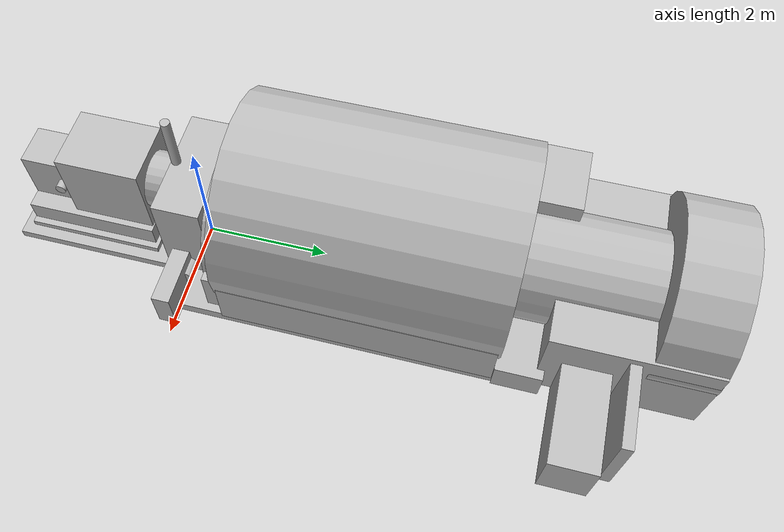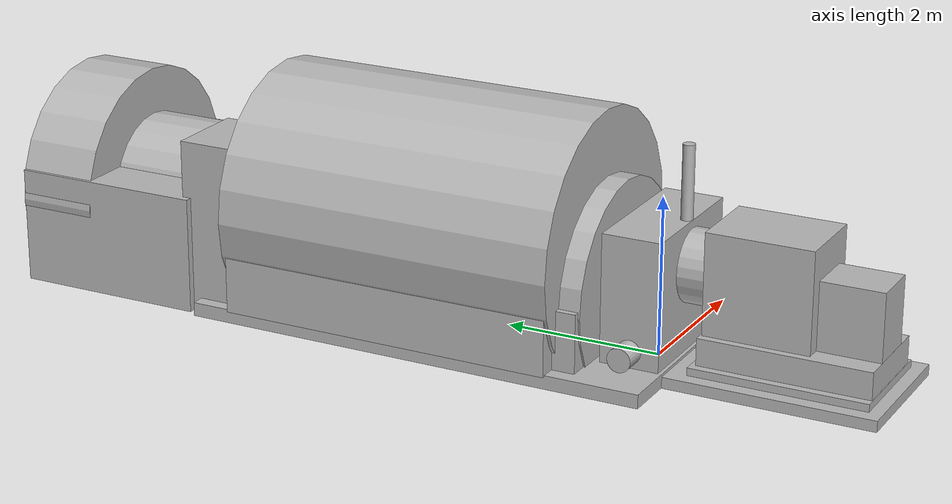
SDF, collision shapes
<?xml version="1.0" ?>
<sdf version="1.6">
  <model name="Generator">
    <link name="base_link">
      <visual name="base_visual">
        <geometry>
          <mesh>
            <uri>base_visual.glb</uri>
          </mesh>
        </geometry>
      </visual>
      <collision name="line002001_collider_box">
        <pose>1.310221 -0.099783 0.344097 -0.0 0.0 0.0</pose>
        <geometry>
          <box>
            <size>1.062369 0.285094 0.688507</size>
          </box>
        </geometry>
      </collision>
      <collision name="line007001_collider_box">
        <pose>1.983937 6.94223 0.679092 -0.0 0.0 0.0</pose>
        <geometry>
          <box>
            <size>1.461588 0.17 1.358184</size>
          </box>
        </geometry>
      </collision>
      <collision name="line009001_collider_box">
        <pose>1.123086 5.444244 0.256934 -0.0 0.0 0.0</pose>
        <geometry>
          <box>
            <size>1.000654 0.728744 0.513869</size>
          </box>
        </geometry>
      </collision>
      <collision name="object004_collider_box">
        <pose>0.007107 -1.409525 1.211913 -0.0 0.0 0.0</pose>
        <geometry>
          <box>
            <size>1.027149 1.333464 1.271448</size>
          </box>
        </geometry>
      </collision>
      <collision name="object001001_collider_box">
        <pose>0.007107 -1.76766 0.167951 -0.0 0.0 0.0</pose>
        <geometry>
          <box>
            <size>1.450202 2.214718 0.134574</size>
          </box>
        </geometry>
      </collision>
      <collision name="object002001_collider_box">
        <pose>0.007107 2.580366 0.086581 -0.0 0.0 0.0</pose>
        <geometry>
          <box>
            <size>3.151071 6.014837 0.173163</size>
          </box>
        </geometry>
      </collision>
      <collision name="object002001_collider_box.001">
        <pose>0.007106 -0.679014 0.06937 -0.0 0.0 0.0</pose>
        <geometry>
          <box>
            <size>1.81638 4.716596 0.13874</size>
          </box>
        </geometry>
      </collision>
      <collision name="object010001_collider_box">
        <pose>0.0 -0.007236 0.96603 -0.0 0.0 0.0</pose>
        <geometry>
          <box>
            <size>1.810959 0.74816 1.613692</size>
          </box>
        </geometry>
      </collision>
      <collision name="object017001_collider_box">
        <pose>2.108736 6.359674 0.424054 -0.0 0.0 0.0</pose>
        <geometry>
          <box>
            <size>1.766328 0.735515 0.92962</size>
          </box>
        </geometry>
      </collision>
      <collision name="box026_collider_box">
        <pose>-0.015714 6.930062 0.735923 -0.0 0.0 0.0</pose>
        <geometry>
          <box>
            <size>2.944389 2.466381 1.471847</size>
          </box>
        </geometry>
      </collision>
      <collision name="box026_collider_box_collider_cylinder">
        <pose>-0.016059 7.666399 1.081692 1.570796 0.0 0.0</pose>
        <geometry>
          <cylinder>
            <radius>1.483018</radius>
            <length>1.010392</length>
          </cylinder>
        </geometry>
      </collision>
      <collision name="box026_collider_box_collider_cylinder.001">
        <pose>-0.016059 6.221897 1.081692 1.570796 0.0 0.0</pose>
        <geometry>
          <cylinder>
            <radius>0.888887</radius>
            <length>2.932261</length>
          </cylinder>
        </geometry>
      </collision>
      <collision name="box026_collider_box_collider_cylinder.002">
        <pose>-0.016059 2.917049 1.316038 1.570796 0.0 0.0</pose>
        <geometry>
          <cylinder>
            <radius>1.65835</radius>
            <length>4.404352</length>
          </cylinder>
        </geometry>
      </collision>
      <collision name="box026_collider_box_collider_cylinder.003">
        <pose>0.0 0.640644 0.8353 1.570796 0.0 0.0</pose>
        <geometry>
          <cylinder>
            <radius>1.306258</radius>
            <length>0.394673</length>
          </cylinder>
        </geometry>
      </collision>
      <collision name="box026001_collider_box">
        <pose>-0.86832 5.437664 1.095789 -0.0 0.0 0.0</pose>
        <geometry>
          <box>
            <size>1.059688 0.74977 2.191579</size>
          </box>
        </geometry>
      </collision>
      <collision name="cylinder006_collider_box">
        <pose>0.035536 0.61301 0.437575 -0.0 0.0 0.0</pose>
        <geometry>
          <box>
            <size>2.825981 0.297553 0.94739</size>
          </box>
        </geometry>
      </collision>
      <collision name="cylinder002001_collider_box">
        <pose>-0.0 2.914505 0.571953 -0.0 0.0 0.0</pose>
        <geometry>
          <box>
            <size>3.217031 4.318384 0.825538</size>
          </box>
        </geometry>
      </collision>
      <collision name="cylinder005001_collider_box">
        <pose>0.007107 -1.794053 0.380503 -0.0 0.0 0.0</pose>
        <geometry>
          <box>
            <size>1.233767 2.142519 0.391373</size>
          </box>
        </geometry>
      </collision>
      <collision name="cylinder008001_collider_box">
        <pose>0.007107 -2.419672 0.970892 -0.0 0.0 0.0</pose>
        <geometry>
          <box>
            <size>0.652259 0.889897 0.917245</size>
          </box>
        </geometry>
      </collision>
      <collision name="cylinder012001_collider_cylinder">
        <pose>0.007107 -0.562054 1.220394 1.570796 0.0 0.0</pose>
        <geometry>
          <cylinder>
            <radius>0.456146</radius>
            <length>0.361478</length>
          </cylinder>
        </geometry>
      </collision>
      <collision name="cylinder021001_collider_cylinder">
        <pose>0.0 -0.303435 2.23521 -0.0 0.0 0.0</pose>
        <geometry>
          <cylinder>
            <radius>0.074933</radius>
            <length>0.924668</length>
          </cylinder>
        </geometry>
      </collision>
      <collision name="cylinder026001_collider_cylinder">
        <pose>0.305334 -2.24845 1.012417 0.0 1.570796 0.0</pose>
        <geometry>
          <cylinder>
            <radius>0.085</radius>
            <length>0.356603</length>
          </cylinder>
        </geometry>
      </collision>
      <collision name="cylinder043001_collider_cylinder">
        <pose>0.007107 -0.007236 0.371015 0.0 1.570796 0.0</pose>
        <geometry>
          <cylinder>
            <radius>0.15</radius>
            <length>2.406888</length>
          </cylinder>
        </geometry>
      </collision>
    </link>
  </model>
</sdf>
